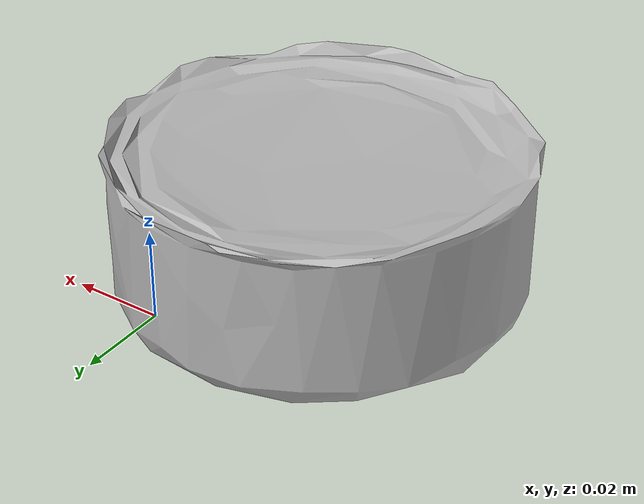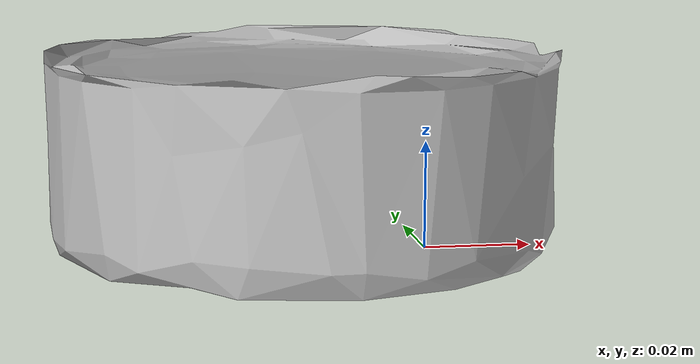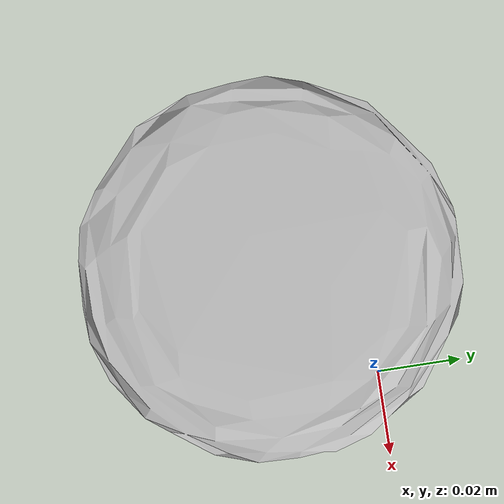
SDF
<?xml version="1.0"?>
<sdf version="1.6">
    <model name="tuna">
        <pose>0 0 0.01 0 0 0</pose>
        <link name="link_00">
            <pose>0.0 0 0 0 0 0</pose>
            <visual name="visual_00">
                <geometry>
                    <mesh>
                        <uri>model://tuna/textured.dae</uri>
                    </mesh>
                </geometry>
            </visual>
            <collision name="collision">
                <geometry>
                    <mesh>
                        <uri>model://tuna/collision.dae</uri>
                    </mesh>
                </geometry>
                <surface>
                    <friction>
                        <ode>
                            <mu>100</mu>
                            <mu2>50</mu2>
                            <fdir1>0.0 0.0 0.0</fdir1>
                            <slip1>0.0</slip1>
                            <slip2>0.0</slip2>
                        </ode>
                    </friction>
                    <contact>
                        <ode>
                            <max_vel>0.1</max_vel>
                            <min_depth>0.001</min_depth>
                        </ode>
                    </contact>
                </surface>
                <max_contacts>3</max_contacts>
            </collision>
            <inertial>
                <pose> -0.026 -0.022 0.013 0 0 0</pose>
                <inertia>
                    <ixx>1.999999999999999e-02</ixx>
                    <ixy>0.0</ixy>
                    <ixz>0.0</ixz>
                    <iyy>1.999999999999999e-02</iyy>
                    <iyz>0.0</iyz>
                    <izz>1.999999999999999e-02</izz>
                </inertia>
            </inertial>
        </link>
    </model>
</sdf>
